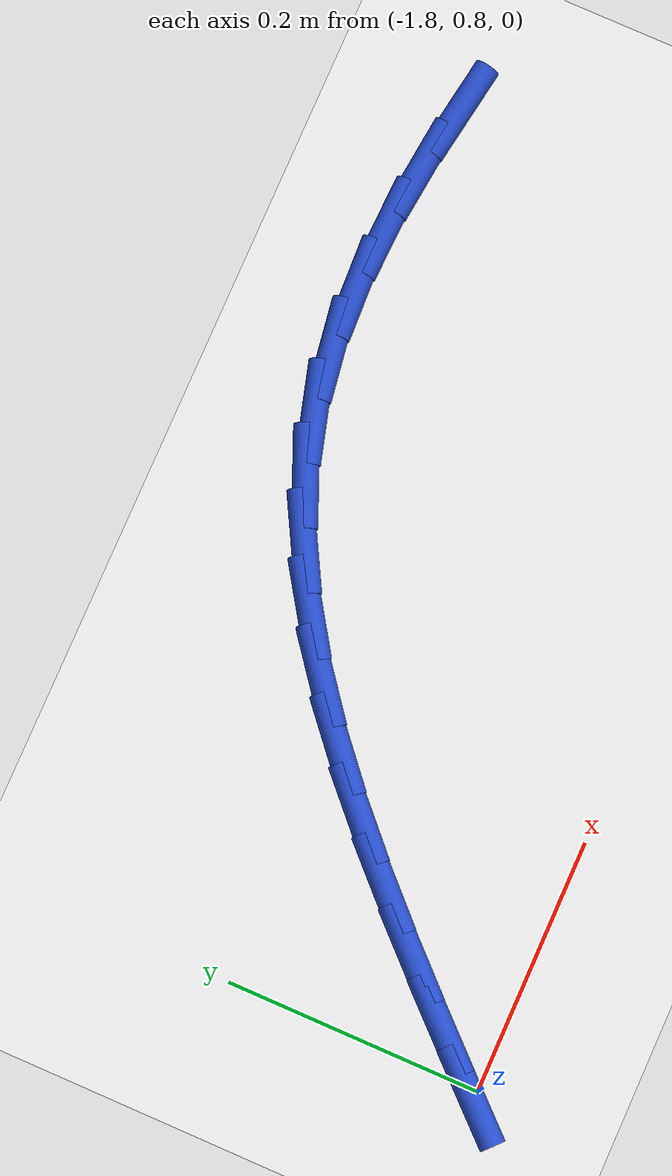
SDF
<sdf version="1.6">
 <world name="default">
  <model name="ground_plane">
   <static>1</static>
   <link name="link">
    <collision name="collision">
     <geometry><plane><normal>0 0 1</normal><size>100 100</size></plane></geometry>
     <surface><friction><ode><mu>100</mu><mu2>50</mu2></ode></friction></surface>
    </collision>
    <visual name="visual">
     <cast_shadows>0</cast_shadows>
     <geometry><plane><normal>0 0 1</normal><size>100 100</size></plane></geometry>
     <material>
      <script><uri>file://media/materials/scripts/gazebo.material</uri><name>Gazebo/WhiteGlow</name></script>
     </material>
    </visual>
   </link>
  </model>
  <model name="line">
   <link name="link_33">
    <pose>-1.1303013528554156 1.1061934288344424 0.01 0 1.57 -0.15993305053993384</pose>
    <collision name="collision">
     <geometry><cylinder><radius>0.01</radius><length>0.08</length></cylinder></geometry>
    </collision>
    <visual name="visual">
     <material>
      <script><name>Gazebo/Blue</name><uri>file://media/materials/scripts/gazebo.material</uri></script>
     </material>
     <geometry><cylinder><radius>0.01</radius><length>0.08</length></cylinder></geometry>
    </visual>
   </link>
   <link name="link_34">
    <pose>-1.1831890539802183 1.1147247845433967 0.01 0 1.57 -0.10906195307514348</pose>
    <collision name="collision">
     <geometry><cylinder><radius>0.01</radius><length>0.08</length></cylinder></geometry>
    </collision>
    <visual name="visual">
     <material>
      <script><name>Gazebo/Blue</name><uri>file://media/materials/scripts/gazebo.material</uri></script>
     </material>
     <geometry><cylinder><radius>0.01</radius><length>0.08</length></cylinder></geometry>
    </visual>
   </link>
   <link name="link_35">
    <pose>-1.2354499340777276 1.120447164508904 0.01 0 1.57 -0.04117629952927893</pose>
    <collision name="collision">
     <geometry><cylinder><radius>0.01</radius><length>0.08</length></cylinder></geometry>
    </collision>
    <visual name="visual">
     <material>
      <script><name>Gazebo/Blue</name><uri>file://media/materials/scripts/gazebo.material</uri></script>
     </material>
     <geometry><cylinder><radius>0.01</radius><length>0.08</length></cylinder></geometry>
    </visual>
   </link>
   <link name="link_36">
    <pose>-1.2868261861905683 1.122563844858292 0.01 0 1.57 0.04547071529497207</pose>
    <collision name="collision">
     <geometry><cylinder><radius>0.01</radius><length>0.08</length></cylinder></geometry>
    </collision>
    <visual name="visual">
     <material>
      <script><name>Gazebo/Blue</name><uri>file://media/materials/scripts/gazebo.material</uri></script>
     </material>
     <geometry><cylinder><radius>0.01</radius><length>0.08</length></cylinder></geometry>
    </visual>
   </link>
   <link name="link_37">
    <pose>-1.3370600033613653 1.1202781017188888 0.01 0 1.57 0.15208981702057348</pose>
    <collision name="collision">
     <geometry><cylinder><radius>0.01</radius><length>0.08</length></cylinder></geometry>
    </collision>
    <visual name="visual">
     <material>
      <script><name>Gazebo/Blue</name><uri>file://media/materials/scripts/gazebo.material</uri></script>
     </material>
     <geometry><cylinder><radius>0.01</radius><length>0.08</length></cylinder></geometry>
    </visual>
   </link>
   <link name="link_38">
    <pose>-1.385893578632743 1.1127932112180223 0.01 0 1.57 0.2754921075955086</pose>
    <collision name="collision">
     <geometry><cylinder><radius>0.01</radius><length>0.08</length></cylinder></geometry>
    </collision>
    <visual name="visual">
     <material>
      <script><name>Gazebo/Blue</name><uri>file://media/materials/scripts/gazebo.material</uri></script>
     </material>
     <geometry><cylinder><radius>0.01</radius><length>0.08</length></cylinder></geometry>
    </visual>
   </link>
   <link name="link_39">
    <pose>-1.4331073213563716 1.0994468317252075 0.01 0 1.57 0.39366945500882805</pose>
    <collision name="collision">
     <geometry><cylinder><radius>0.01</radius><length>0.08</length></cylinder></geometry>
    </collision>
    <visual name="visual">
     <material>
      <script><name>Gazebo/Blue</name><uri>file://media/materials/scripts/gazebo.material</uri></script>
     </material>
     <geometry><cylinder><radius>0.01</radius><length>0.08</length></cylinder></geometry>
    </visual>
   </link>
   <link name="link_40">
    <pose>-1.4787420737757289 1.0804923970161877 0.01 0 1.57 0.4961172985039114</pose>
    <collision name="collision">
     <geometry><cylinder><radius>0.01</radius><length>0.08</length></cylinder></geometry>
    </collision>
    <visual name="visual">
     <material>
      <script><name>Gazebo/Blue</name><uri>file://media/materials/scripts/gazebo.material</uri></script>
     </material>
     <geometry><cylinder><radius>0.01</radius><length>0.08</length></cylinder></geometry>
    </visual>
   </link>
   <link name="link_41">
    <pose>-1.5229473164476117 1.0565653521204286 0.01 0 1.57 0.5822697247739835</pose>
    <collision name="collision">
     <geometry><cylinder><radius>0.01</radius><length>0.08</length></cylinder></geometry>
    </collision>
    <visual name="visual">
     <material>
      <script><name>Gazebo/Blue</name><uri>file://media/materials/scripts/gazebo.material</uri></script>
     </material>
     <geometry><cylinder><radius>0.01</radius><length>0.08</length></cylinder></geometry>
    </visual>
   </link>
   <link name="link_42">
    <pose>-1.565872891086945 1.0283024120288395 0.01 0 1.57 0.6528566812818172</pose>
    <collision name="collision">
     <geometry><cylinder><radius>0.01</radius><length>0.08</length></cylinder></geometry>
    </collision>
    <visual name="visual">
     <material>
      <script><name>Gazebo/Blue</name><uri>file://media/materials/scripts/gazebo.material</uri></script>
     </material>
     <geometry><cylinder><radius>0.01</radius><length>0.08</length></cylinder></geometry>
    </visual>
   </link>
   <link name="link_43">
    <pose>-1.6076686394086517 0.9963402917323299 0.01 0 1.57 0.7091859410439421</pose>
    <collision name="collision">
     <geometry><cylinder><radius>0.01</radius><length>0.08</length></cylinder></geometry>
    </collision>
    <visual name="visual">
     <material>
      <script><name>Gazebo/Blue</name><uri>file://media/materials/scripts/gazebo.material</uri></script>
     </material>
     <geometry><cylinder><radius>0.01</radius><length>0.08</length></cylinder></geometry>
    </visual>
   </link>
   <link name="link_44">
    <pose>-1.648484403127657 0.9613157062218108 0.01 0 1.57 0.7526694427145645</pose>
    <collision name="collision">
     <geometry><cylinder><radius>0.01</radius><length>0.08</length></cylinder></geometry>
    </collision>
    <visual name="visual">
     <material>
      <script><name>Gazebo/Blue</name><uri>file://media/materials/scripts/gazebo.material</uri></script>
     </material>
     <geometry><cylinder><radius>0.01</radius><length>0.08</length></cylinder></geometry>
    </visual>
   </link>
   <link name="link_45">
    <pose>-1.6884700239588852 0.9238653704881905 0.01 0 1.57 0.7845585308705214</pose>
    <collision name="collision">
     <geometry><cylinder><radius>0.01</radius><length>0.08</length></cylinder></geometry>
    </collision>
    <visual name="visual">
     <material>
      <script><name>Gazebo/Blue</name><uri>file://media/materials/scripts/gazebo.material</uri></script>
     </material>
     <geometry><cylinder><radius>0.01</radius><length>0.08</length></cylinder></geometry>
    </visual>
   </link>
   <link name="link_46">
    <pose>-1.7277753436172603 0.8846259995223785 0.01 0 1.57 0.8058184828105729</pose>
    <collision name="collision">
     <geometry><cylinder><radius>0.01</radius><length>0.08</length></cylinder></geometry>
    </collision>
    <visual name="visual">
     <material>
      <script><name>Gazebo/Blue</name><uri>file://media/materials/scripts/gazebo.material</uri></script>
     </material>
     <geometry><cylinder><radius>0.01</radius><length>0.08</length></cylinder></geometry>
    </visual>
   </link>
   <link name="link_47">
    <pose>-1.7665502038177072 0.844234308315285 0.01 0 1.57 0.817148558505741</pose>
    <collision name="collision">
     <geometry><cylinder><radius>0.01</radius><length>0.08</length></cylinder></geometry>
    </collision>
    <visual name="visual">
     <material>
      <script><name>Gazebo/Blue</name><uri>file://media/materials/scripts/gazebo.material</uri></script>
     </material>
     <geometry><cylinder><radius>0.01</radius><length>0.08</length></cylinder></geometry>
    </visual>
   </link>
   <link name="link_48">
    <pose>-1.8049421359271745 0.8033236409127127 0.01 0 1.57 0.8242197119102401</pose>
    <collision name="collision">
     <geometry><cylinder><radius>0.01</radius><length>0.08</length></cylinder></geometry>
    </collision>
    <visual name="visual">
     <material>
      <script><name>Gazebo/Blue</name><uri>file://media/materials/scripts/gazebo.material</uri></script>
     </material>
     <geometry><cylinder><radius>0.01</radius><length>0.08</length></cylinder></geometry>
    </visual>
   </link>
  </model>
 </world>
</sdf>
